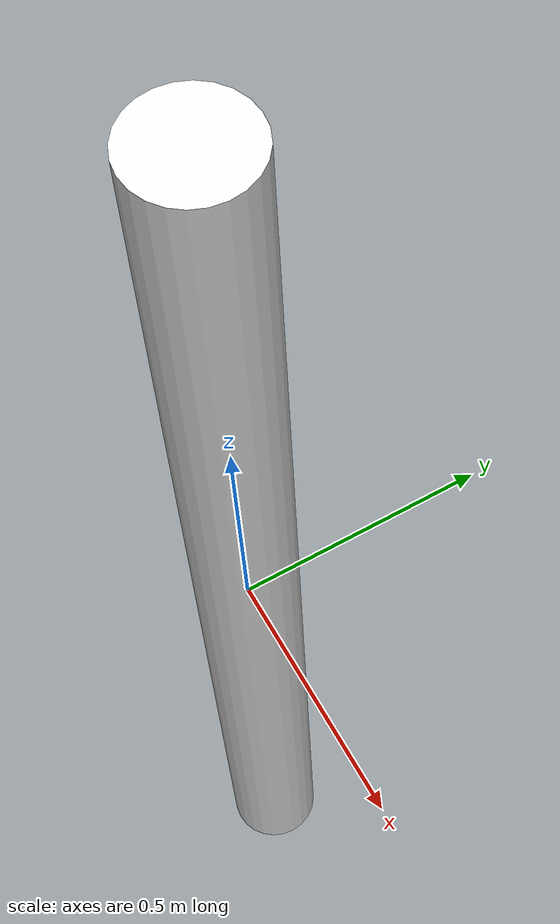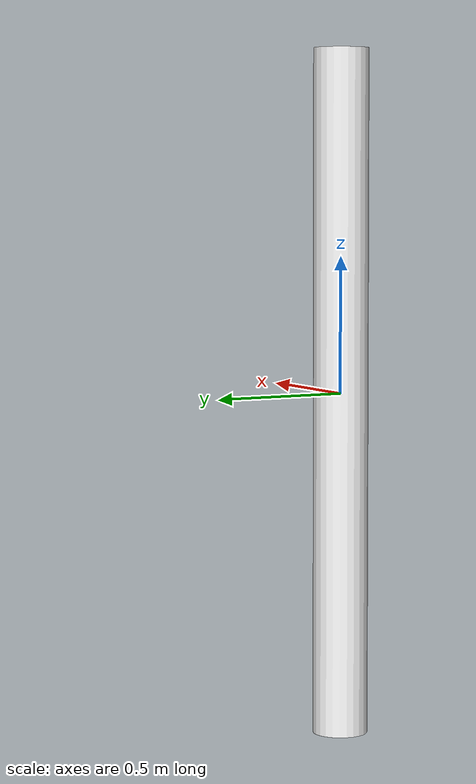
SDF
<?xml version="1.0" ?>
<sdf version='1.4'>
  <model name="basic_column">
      <static>1</static>
      <link name='link'>
        <collision name='collision'>
          <geometry>
            <cylinder>
              <radius>0.1</radius>
              <length>2.5</length>
            </cylinder>
          </geometry>
          <surface>
            <friction>
              <ode>
                <mu>5.0</mu>
                <mu2>5.0</mu2>
              </ode>
            </friction>
          </surface>
        </collision>
        <visual name='visual'>
          <geometry>
            <cylinder>
              <radius>0.1</radius>
              <length>2.5</length>
            </cylinder>
          </geometry>
          <material>
            <script>
              <uri>file://media/materials/scripts/gazebo.material</uri>
              <name>Gazebo/White</name>
            </script>
          </material>
        </visual>
        <self_collide>0</self_collide>
        <kinematic>0</kinematic>
        <gravity>0</gravity>
      </link>
  </model>
</sdf>
